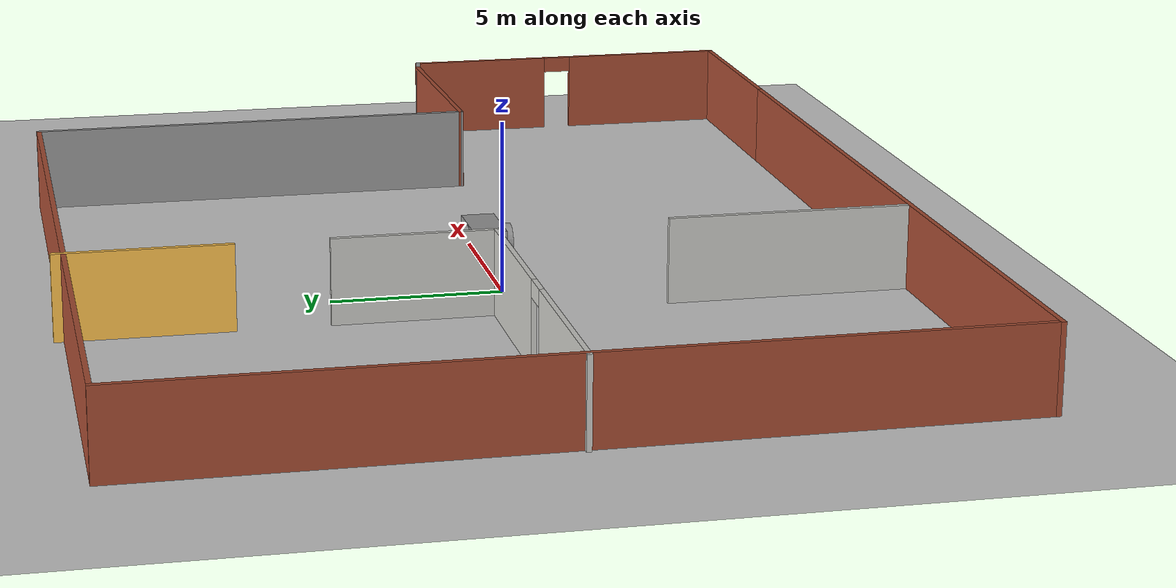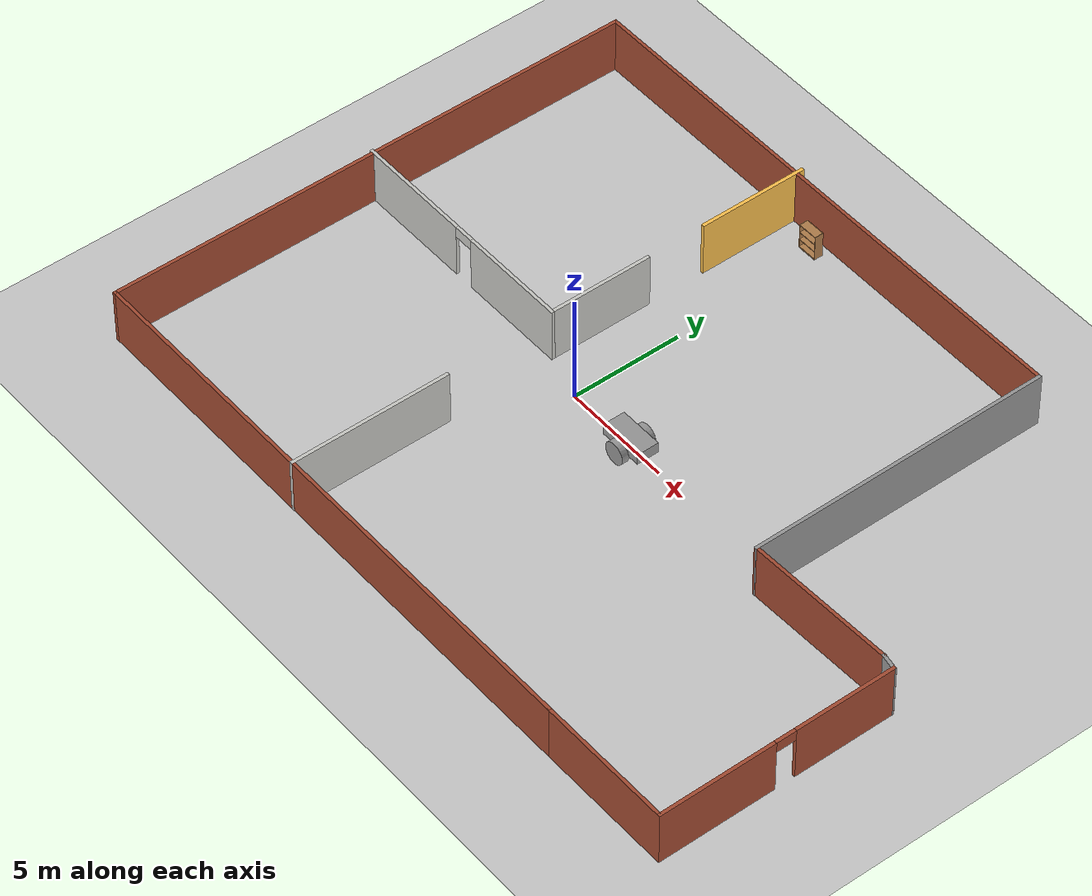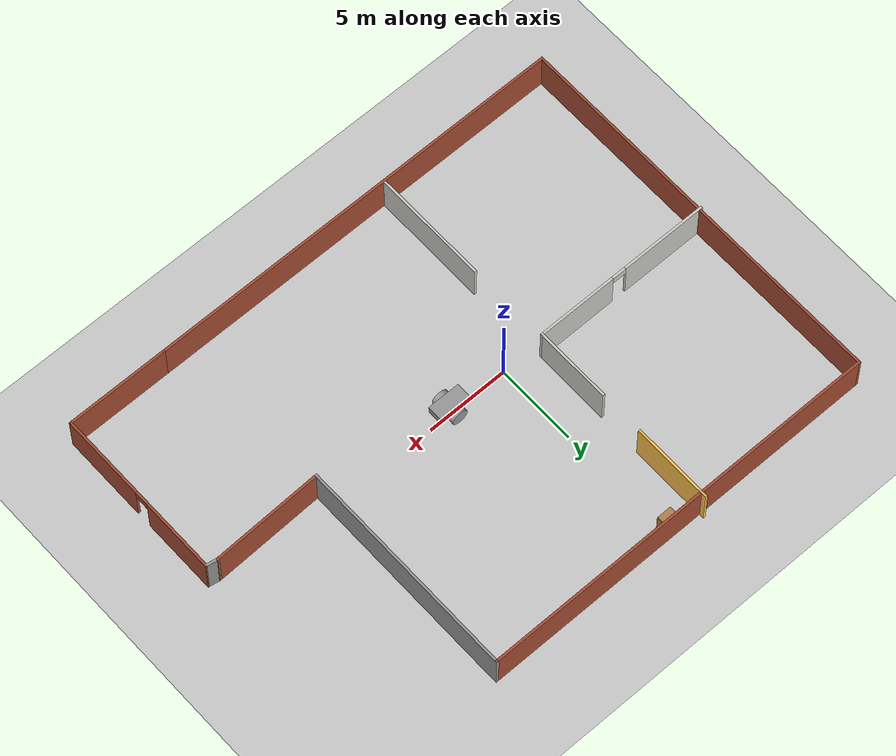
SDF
<sdf version="1.6">
 <world name="default">
  <plugin name="welcome_message" filename="libwelcome_message.so"/>
  <light name="sun" type="directional">
   <pose>0 0 10 0 -0 0</pose>
   <diffuse>0.8 0.8 0.8 1</diffuse>
   <specular>0.2 0.2 0.2 1</specular>
   <attenuation>
    <range>1000</range>
    <constant>0.9</constant>
    <linear>0.01</linear>
    <quadratic>0.001</quadratic>
   </attenuation>
   <direction>-0.5 0.1 -0.9</direction>
  </light>
  <model name="ground_plane">
   <static>1</static>
   <link name="link">
    <collision name="collision">
     <geometry><plane><normal>0 0 1</normal><size>100 100</size></plane></geometry>
     <surface>
      <contact><collide_bitmask>65535</collide_bitmask></contact>
      <friction><ode><mu>100</mu><mu2>50</mu2></ode></friction>
     </surface>
    </collision>
    <visual name="visual">
     <cast_shadows>0</cast_shadows>
     <geometry><plane><normal>0 0 1</normal><size>100 100</size></plane></geometry>
     <material>
      <script><uri>file://media/materials/scripts/gazebo.material</uri><name>Gazebo/Grey</name></script>
     </material>
    </visual>
   </link>
  </model>
  <gravity>0 0 -9.8</gravity>
  <magnetic_field>6e-06 2.3e-05 -4.2e-05</magnetic_field>
  <atmosphere type="adiabatic"/>
  <physics name="default_physics" default="0" type="ode">
   <max_step_size>0.001</max_step_size>
   <real_time_factor>1</real_time_factor>
   <real_time_update_rate>1000</real_time_update_rate>
  </physics>
  <scene><ambient>0.4 0.4 0.4 1</ambient><background>0.7 0.7 0.7 1</background><shadows>1</shadows></scene>
  <spherical_coordinates>
   <surface_model>EARTH_WGS84</surface_model>
   <latitude_deg>0</latitude_deg>
   <longitude_deg>0</longitude_deg>
   <elevation>0</elevation>
   <heading_deg>0</heading_deg>
  </spherical_coordinates>
  <model name="building">
   <pose>2.95561 0.637558 0 0 -0 0</pose>
   <link name="Wall_10">
    <collision name="Wall_10_Collision">
     <geometry><box><size>24.25 0.15 2.5</size></box></geometry>
     <pose>0 0 1.25 0 -0 0</pose>
    </collision>
    <visual name="Wall_10_Visual">
     <pose>0 0 1.25 0 -0 0</pose>
     <geometry><box><size>24.25 0.15 2.5</size></box></geometry>
     <material>
      <script><uri>file://media/materials/scripts/gazebo.material</uri><name>Gazebo/Bricks</name></script>
      <ambient>1 1 1 1</ambient>
     </material>
     <meta><layer>0</layer></meta>
    </visual>
    <pose>-16.0504 -0.138687 0 0 -0 1.5708</pose>
   </link>
   <link name="Wall_11">
    <collision name="Wall_11_Collision">
     <geometry><box><size>25 0.15 2.5</size></box></geometry>
     <pose>0 0 1.25 0 -0 0</pose>
    </collision>
    <visual name="Wall_11_Visual">
     <pose>0 0 1.25 0 -0 0</pose>
     <geometry><box><size>25 0.15 2.5</size></box></geometry>
     <material>
      <script><uri>file://media/materials/scripts/gazebo.material</uri><name>Gazebo/Bricks</name></script>
      <ambient>1 1 1 1</ambient>
     </material>
     <meta><layer>0</layer></meta>
    </visual>
    <pose>-3.62538 11.9113 0 0 -0 0</pose>
   </link>
   <link name="Wall_12">
    <collision name="Wall_12_Collision">
     <geometry><box><size>13.75 0.15 2.5</size></box></geometry>
     <pose>0 0 1.25 0 -0 0</pose>
    </collision>
    <visual name="Wall_12_Visual">
     <pose>0 0 1.25 0 -0 0</pose>
     <geometry><box><size>13.75 0.15 2.5</size></box></geometry>
     <material>
      <script><uri>file://media/materials/scripts/gazebo.material</uri><name>Gazebo/Grey</name></script>
      <ambient>1 1 1 1</ambient>
     </material>
     <meta><layer>0</layer></meta>
    </visual>
    <pose>8.79962 5.11131 0 0 0 -1.5708</pose>
   </link>
   <link name="Wall_13">
    <collision name="Wall_13_Collision">
     <geometry><box><size>6.85778 0.15 2.5</size></box></geometry>
     <pose>0 0 1.25 0 -0 0</pose>
    </collision>
    <visual name="Wall_13_Visual">
     <pose>0 0 1.25 0 -0 0</pose>
     <geometry><box><size>6.85778 0.15 2.5</size></box></geometry>
     <material>
      <script><uri>file://media/materials/scripts/gazebo.material</uri><name>Gazebo/Bricks</name></script>
      <ambient>1 1 1 1</ambient>
     </material>
     <meta><layer>0</layer></meta>
    </visual>
    <pose>12.1518 -1.58108 0 0 -0 0.032091</pose>
   </link>
   <link name="Wall_16">
    <collision name="Wall_16_Collision">
     <geometry><box><size>6.25 0.15 2.5</size></box></geometry>
     <pose>0 0 1.25 0 -0 0</pose>
    </collision>
    <visual name="Wall_16_Visual">
     <pose>0 0 1.25 0 -0 0</pose>
     <geometry><box><size>6.25 0.15 2.5</size></box></geometry>
     <material>
      <script><uri>file://media/materials/scripts/gazebo.material</uri><name>Gazebo/Bricks</name></script>
      <ambient>1 1 1 1</ambient>
     </material>
     <meta><layer>0</layer></meta>
    </visual>
    <pose>13.0996 -12.1887 0 0 -0 0</pose>
   </link>
   <link name="Wall_18">
    <pose>16.1496 -6.88869 0 0 -0 1.5708</pose>
    <visual name="Wall_18_Visual_0">
     <pose>-2.74935 0 1.25 0 -0 0</pose>
     <geometry><box><size>5.2513 0.15 2.5</size></box></geometry>
     <material>
      <script><uri>file://media/materials/scripts/gazebo.material</uri><name>Gazebo/Bricks</name></script>
      <ambient>1 1 1 1</ambient>
     </material>
     <meta><layer>0</layer></meta>
    </visual>
    <collision name="Wall_18_Collision_0">
     <geometry><box><size>5.2513 0.15 2.5</size></box></geometry>
     <pose>-2.74935 0 1.25 0 -0 0</pose>
    </collision>
    <visual name="Wall_18_Visual_1">
     <pose>3.07565 0 1.25 0 -0 0</pose>
     <geometry><box><size>4.5987 0.15 2.5</size></box></geometry>
     <material>
      <script><uri>file://media/materials/scripts/gazebo.material</uri><name>Gazebo/Bricks</name></script>
      <ambient>1 1 1 1</ambient>
     </material>
     <meta><layer>0</layer></meta>
    </visual>
    <collision name="Wall_18_Collision_1">
     <geometry><box><size>4.5987 0.15 2.5</size></box></geometry>
     <pose>3.07565 0 1.25 0 -0 0</pose>
    </collision>
    <visual name="Wall_18_Visual_2">
     <pose>0.3263 0 2.25 0 -0 0</pose>
     <geometry><box><size>0.9 0.15 0.5</size></box></geometry>
     <material>
      <script><uri>file://media/materials/scripts/gazebo.material</uri><name>Gazebo/Bricks</name></script>
      <ambient>1 1 1 1</ambient>
     </material>
     <meta><layer>0</layer></meta>
    </visual>
    <collision name="Wall_18_Collision_2">
     <geometry><box><size>0.9 0.15 0.5</size></box></geometry>
     <pose>0.3263 0 2.25 0 -0 0</pose>
    </collision>
   </link>
   <link name="Wall_19">
    <collision name="Wall_19_Collision">
     <geometry><box><size>0.805877 0.15 2.5</size></box></geometry>
     <pose>0 0 1.25 0 -0 0</pose>
    </collision>
    <visual name="Wall_19_Visual">
     <pose>0 0 1.25 0 -0 0</pose>
     <geometry><box><size>0.805877 0.15 2.5</size></box></geometry>
     <material>
      <script><uri>file://media/materials/scripts/gazebo.material</uri><name>Gazebo/Grey</name></script>
      <ambient>1 1 1 1</ambient>
     </material>
     <meta><layer>0</layer></meta>
    </visual>
    <pose>15.8268 -1.53107 0 0 -0 2.965</pose>
   </link>
   <link name="Wall_22">
    <pose>-10.6116 -0.033933 0 0 -0 3.14159</pose>
    <visual name="Wall_22_Visual_0">
     <pose>-3.15178 0 1.25 0 -0 0</pose>
     <geometry><box><size>4.94644 0.15 2.5</size></box></geometry>
     <material>
      <script><uri>file://media/materials/scripts/gazebo.material</uri><name>Gazebo/CeilingTiled</name></script>
      <ambient>1 0.764706 0.305882 1</ambient>
     </material>
     <meta><layer>0</layer></meta>
    </visual>
    <collision name="Wall_22_Collision_0">
     <geometry><box><size>4.94644 0.15 2.5</size></box></geometry>
     <pose>-3.15178 0 1.25 0 -0 0</pose>
    </collision>
    <visual name="Wall_22_Visual_1">
     <pose>2.92322 0 1.25 0 -0 0</pose>
     <geometry><box><size>5.40355 0.15 2.5</size></box></geometry>
     <material>
      <script><uri>file://media/materials/scripts/gazebo.material</uri><name>Gazebo/CeilingTiled</name></script>
      <ambient>1 0.764706 0.305882 1</ambient>
     </material>
     <meta><layer>0</layer></meta>
    </visual>
    <collision name="Wall_22_Collision_1">
     <geometry><box><size>5.40355 0.15 2.5</size></box></geometry>
     <pose>2.92322 0 1.25 0 -0 0</pose>
    </collision>
    <visual name="Wall_22_Visual_2">
     <pose>-0.228555 0 2.25 0 -0 0</pose>
     <geometry><box><size>0.9 0.15 0.5</size></box></geometry>
     <material>
      <script><uri>file://media/materials/scripts/gazebo.material</uri><name>Gazebo/CeilingTiled</name></script>
      <ambient>1 0.764706 0.305882 1</ambient>
     </material>
     <meta><layer>0</layer></meta>
    </visual>
    <collision name="Wall_22_Collision_2">
     <geometry><box><size>0.9 0.15 0.5</size></box></geometry>
     <pose>-0.228555 0 2.25 0 -0 0</pose>
    </collision>
   </link>
   <link name="Wall_24">
    <collision name="Wall_24_Collision">
     <geometry><box><size>4.75 0.15 2.5</size></box></geometry>
     <pose>0 0 1.25 0 -0 0</pose>
    </collision>
    <visual name="Wall_24_Visual">
     <pose>0 0 1.25 0 -0 0</pose>
     <geometry><box><size>4.75 0.15 2.5</size></box></geometry>
     <material>
      <script><uri>file://media/materials/scripts/gazebo.material</uri><name>Gazebo/CeilingTiled</name></script>
      <ambient>1 0.764706 0.305882 1</ambient>
     </material>
     <meta><layer>0</layer></meta>
    </visual>
    <pose>-5.06163 2.26607 0 0 -0 1.5708</pose>
   </link>
   <link name="Wall_26">
    <collision name="Wall_26_Collision">
     <geometry><box><size>5 0.15 2.5</size></box></geometry>
     <pose>0 0 1.25 0 -0 0</pose>
    </collision>
    <visual name="Wall_26_Visual">
     <pose>0 0 1.25 0 -0 0</pose>
     <geometry><box><size>5 0.15 2.5</size></box></geometry>
     <material>
      <script><uri>file://media/materials/scripts/gazebo.material</uri><name>Gazebo/Grey</name></script>
      <ambient>1 0.764706 0.305882 1</ambient>
     </material>
     <meta><layer>0</layer></meta>
    </visual>
    <pose>-5.06163 9.76482 0 0 0 -1.5708</pose>
   </link>
   <link name="Wall_28">
    <collision name="Wall_28_Collision">
     <geometry><box><size>7.25 0.15 2.5</size></box></geometry>
     <pose>0 0 1.25 0 -0 0</pose>
    </collision>
    <visual name="Wall_28_Visual">
     <pose>0 0 1.25 0 -0 0</pose>
     <geometry><box><size>7.25 0.15 2.5</size></box></geometry>
     <material>
      <script><uri>file://media/materials/scripts/gazebo.material</uri><name>Gazebo/CeilingTiled</name></script>
      <ambient>1 0.333333 1 1</ambient>
     </material>
     <meta><layer>0</layer></meta>
    </visual>
    <pose>-4.93788 -8.63982 0 0 -0 1.5708</pose>
   </link>
   <link name="Wall_8">
    <collision name="Wall_8_Collision">
     <geometry><box><size>26.25 0.15 2.5</size></box></geometry>
     <pose>0 0 1.25 0 -0 0</pose>
    </collision>
    <visual name="Wall_8_Visual">
     <pose>0 0 1.25 0 -0 0</pose>
     <geometry><box><size>26.25 0.15 2.5</size></box></geometry>
     <material>
      <script><uri>file://media/materials/scripts/gazebo.material</uri><name>Gazebo/Bricks</name></script>
      <ambient>1 1 1 1</ambient>
     </material>
     <meta><layer>0</layer></meta>
    </visual>
    <pose>-3.00038 -12.1887 0 0 -0 3.14159</pose>
   </link>
   <static>1</static>
  </model>
  <model name="bookshelf">
   <static>1</static>
   <link name="link">
    <inertial><mass>1</mass></inertial>
    <collision name="back">
     <pose>0 0.005 0.6 0 -0 0</pose>
     <geometry><box><size>0.9 0.01 1.2</size></box></geometry>
    </collision>
    <visual name="visual1">
     <pose>0 0.005 0.6 0 -0 0</pose>
     <geometry><box><size>0.9 0.01 1.2</size></box></geometry>
     <material>
      <script><uri>file://media/materials/scripts/gazebo.material</uri><name>Gazebo/Wood</name></script>
     </material>
    </visual>
    <collision name="left_side">
     <pose>0.45 -0.195 0.6 0 -0 0</pose>
     <geometry><box><size>0.02 0.4 1.2</size></box></geometry>
    </collision>
    <visual name="visual2">
     <pose>0.45 -0.195 0.6 0 -0 0</pose>
     <geometry><box><size>0.02 0.4 1.2</size></box></geometry>
     <material>
      <script><uri>file://media/materials/scripts/gazebo.material</uri><name>Gazebo/Wood</name></script>
     </material>
    </visual>
    <collision name="right_side">
     <pose>-0.45 -0.195 0.6 0 -0 0</pose>
     <geometry><box><size>0.02 0.4 1.2</size></box></geometry>
    </collision>
    <visual name="visual3">
     <pose>-0.45 -0.195 0.6 0 -0 0</pose>
     <geometry><box><size>0.02 0.4 1.2</size></box></geometry>
     <material>
      <script><uri>file://media/materials/scripts/gazebo.material</uri><name>Gazebo/Wood</name></script>
     </material>
    </visual>
    <collision name="bottom">
     <pose>0 -0.195 0.03 0 -0 0</pose>
     <geometry><box><size>0.88 0.4 0.06</size></box></geometry>
    </collision>
    <visual name="visual4">
     <pose>0 -0.195 0.03 0 -0 0</pose>
     <geometry><box><size>0.88 0.4 0.06</size></box></geometry>
     <material>
      <script><uri>file://media/materials/scripts/gazebo.material</uri><name>Gazebo/Wood</name></script>
     </material>
    </visual>
    <collision name="top">
     <pose>0 -0.195 1.19 0 -0 0</pose>
     <geometry><box><size>0.88 0.4 0.02</size></box></geometry>
    </collision>
    <visual name="visual5">
     <pose>0 -0.195 1.19 0 -0 0</pose>
     <geometry><box><size>0.88 0.4 0.02</size></box></geometry>
     <material>
      <script><uri>file://media/materials/scripts/gazebo.material</uri><name>Gazebo/Wood</name></script>
     </material>
    </visual>
    <collision name="low_shelf">
     <pose>0 -0.195 0.43 0 -0 0</pose>
     <geometry><box><size>0.88 0.4 0.02</size></box></geometry>
    </collision>
    <visual name="visual6">
     <pose>0 -0.195 0.43 0 -0 0</pose>
     <geometry><box><size>0.88 0.4 0.02</size></box></geometry>
     <material>
      <script><uri>file://media/materials/scripts/gazebo.material</uri><name>Gazebo/Wood</name></script>
     </material>
    </visual>
    <collision name="high_shelf">
     <pose>0 -0.195 0.8 0 -0 0</pose>
     <geometry><box><size>0.88 0.4 0.02</size></box></geometry>
    </collision>
    <visual name="visual7">
     <pose>0 -0.195 0.8 0 -0 0</pose>
     <geometry><box><size>0.88 0.4 0.02</size></box></geometry>
     <material>
      <script><uri>file://media/materials/scripts/gazebo.material</uri><name>Gazebo/Wood</name></script>
     </material>
    </visual>
   </link>
   <pose>-0.369678 12.0893 0 0 -0 0</pose>
  </model>
  <model name="myrobot_0">
   <link name="link_3">
    <pose>0 0 0.2 0 -0 0</pose>
    <inertial>
     <mass>1</mass>
     <inertia>
      <ixx>0.166667</ixx>
      <ixy>0</ixy>
      <ixz>0</ixz>
      <iyy>0.166667</iyy>
      <iyz>0</iyz>
      <izz>0.166667</izz>
     </inertia>
    </inertial>
    <visual name="visual">
     <geometry><box><size>2 1 0.5</size></box></geometry>
     <material>
      <lighting>1</lighting>
      <script><uri>file://media/materials/scripts/gazebo.material</uri><name>Gazebo/Grey</name></script>
      <shader type="pixel"><normal_map>__default__</normal_map></shader>
      <ambient>0.3 0.3 0.3 1</ambient>
      <diffuse>0.7 0.7 0.7 1</diffuse>
      <specular>0.01 0.01 0.01 1</specular>
      <emissive>0 0 0 1</emissive>
     </material>
    </visual>
    <collision name="collision">
     <geometry><box><size>2 1 0.5</size></box></geometry>
     <surface>
      <friction>
       <ode><mu>1</mu><mu2>1</mu2><fdir1>0 0 0</fdir1><slip1>0</slip1><slip2>0</slip2></ode>
       <torsional>
        <coefficient>1</coefficient>
        <patch_radius>0</patch_radius>
        <surface_radius>0</surface_radius>
        <use_patch_radius>1</use_patch_radius>
        <ode><slip>0</slip></ode>
       </torsional>
      </friction>
      <bounce><restitution_coefficient>0</restitution_coefficient><threshold>1e+06</threshold></bounce>
      <contact>
       <collide_without_contact>0</collide_without_contact>
       <collide_without_contact_bitmask>1</collide_without_contact_bitmask>
       <collide_bitmask>1</collide_bitmask>
       <ode>
        <soft_cfm>0</soft_cfm>
        <soft_erp>0.2</soft_erp>
        <kp>1e+13</kp>
        <kd>1</kd>
        <max_vel>0.01</max_vel>
        <min_depth>0</min_depth>
       </ode>
       <bullet>
        <split_impulse>1</split_impulse>
        <split_impulse_penetration_threshold>-0.01</split_impulse_penetration_threshold>
        <soft_cfm>0</soft_cfm>
        <soft_erp>0.2</soft_erp>
        <kp>1e+13</kp>
        <kd>1</kd>
       </bullet>
      </contact>
     </surface>
    </collision>
   </link>
   <link name="link_4_clone">
    <pose>0 0.650048 -0.1 1.5707 -0 0</pose>
    <inertial>
     <mass>1</mass>
     <inertia><ixx>0.145833</ixx><ixy>0</ixy><ixz>0</ixz><iyy>0.145833</iyy><iyz>0</iyz><izz>0.125</izz></inertia>
    </inertial>
    <visual name="visual">
     <geometry><cylinder><radius>0.5</radius><length>0.3</length></cylinder></geometry>
     <material>
      <lighting>1</lighting>
      <script><uri>file://media/materials/scripts/gazebo.material</uri><name>Gazebo/Grey</name></script>
      <shader type="pixel"><normal_map>__default__</normal_map></shader>
      <ambient>0.3 0.3 0.3 1</ambient>
      <diffuse>0.7 0.7 0.7 1</diffuse>
      <specular>0.01 0.01 0.01 1</specular>
      <emissive>0 0 0 1</emissive>
     </material>
    </visual>
    <collision name="collision">
     <geometry><cylinder><radius>0.5</radius><length>0.3</length></cylinder></geometry>
     <surface>
      <friction>
       <ode><mu>1</mu><mu2>1</mu2><fdir1>0 0 0</fdir1><slip1>0</slip1><slip2>0</slip2></ode>
       <torsional>
        <coefficient>1</coefficient>
        <patch_radius>0</patch_radius>
        <surface_radius>0</surface_radius>
        <use_patch_radius>1</use_patch_radius>
        <ode><slip>0</slip></ode>
       </torsional>
      </friction>
      <bounce><restitution_coefficient>0</restitution_coefficient><threshold>1e+06</threshold></bounce>
      <contact>
       <collide_without_contact>0</collide_without_contact>
       <collide_without_contact_bitmask>1</collide_without_contact_bitmask>
       <collide_bitmask>1</collide_bitmask>
       <ode>
        <soft_cfm>0</soft_cfm>
        <soft_erp>0.2</soft_erp>
        <kp>1e+13</kp>
        <kd>1</kd>
        <max_vel>0.01</max_vel>
        <min_depth>0</min_depth>
       </ode>
       <bullet>
        <split_impulse>1</split_impulse>
        <split_impulse_penetration_threshold>-0.01</split_impulse_penetration_threshold>
        <soft_cfm>0</soft_cfm>
        <soft_erp>0.2</soft_erp>
        <kp>1e+13</kp>
        <kd>1</kd>
       </bullet>
      </contact>
     </surface>
    </collision>
   </link>
   <link name="link_4_clone_clone">
    <pose>0 -0.650048 -0.1 1.5707 -0 0</pose>
    <inertial>
     <mass>1</mass>
     <inertia><ixx>0.145833</ixx><ixy>0</ixy><ixz>0</ixz><iyy>0.145833</iyy><iyz>0</iyz><izz>0.125</izz></inertia>
    </inertial>
    <visual name="visual">
     <geometry><cylinder><radius>0.5</radius><length>0.3</length></cylinder></geometry>
     <material>
      <lighting>1</lighting>
      <script><uri>file://media/materials/scripts/gazebo.material</uri><name>Gazebo/Grey</name></script>
      <shader type="pixel"><normal_map>__default__</normal_map></shader>
      <ambient>0.3 0.3 0.3 1</ambient>
      <diffuse>0.7 0.7 0.7 1</diffuse>
      <specular>0.01 0.01 0.01 1</specular>
      <emissive>0 0 0 1</emissive>
     </material>
    </visual>
    <collision name="collision">
     <geometry><cylinder><radius>0.5</radius><length>0.3</length></cylinder></geometry>
     <surface>
      <friction>
       <ode><mu>1</mu><mu2>1</mu2><fdir1>0 0 0</fdir1><slip1>0</slip1><slip2>0</slip2></ode>
       <torsional>
        <coefficient>1</coefficient>
        <patch_radius>0</patch_radius>
        <surface_radius>0</surface_radius>
        <use_patch_radius>1</use_patch_radius>
        <ode><slip>0</slip></ode>
       </torsional>
      </friction>
      <bounce><restitution_coefficient>0</restitution_coefficient><threshold>1e+06</threshold></bounce>
      <contact>
       <collide_without_contact>0</collide_without_contact>
       <collide_without_contact_bitmask>1</collide_without_contact_bitmask>
       <collide_bitmask>1</collide_bitmask>
       <ode>
        <soft_cfm>0</soft_cfm>
        <soft_erp>0.2</soft_erp>
        <kp>1e+13</kp>
        <kd>1</kd>
        <max_vel>0.01</max_vel>
        <min_depth>0</min_depth>
       </ode>
       <bullet>
        <split_impulse>1</split_impulse>
        <split_impulse_penetration_threshold>-0.01</split_impulse_penetration_threshold>
        <soft_cfm>0</soft_cfm>
        <soft_erp>0.2</soft_erp>
        <kp>1e+13</kp>
        <kd>1</kd>
       </bullet>
      </contact>
     </surface>
    </collision>
   </link>
   <joint name="link_3_JOINT_3" type="revolute">
    <parent>link_3</parent>
    <child>link_4_clone_clone</child>
    <axis>
     <xyz>0 0 1</xyz>
     <use_parent_model_frame>0</use_parent_model_frame>
     <limit>
      <lower>-1.79769e+308</lower>
      <upper>1.79769e+308</upper>
      <effort>-1</effort>
      <velocity>-1</velocity>
     </limit>
     <dynamics>
      <spring_reference>0</spring_reference>
      <spring_stiffness>0</spring_stiffness>
      <damping>0</damping>
     </dynamics>
    </axis>
    <physics>
     <ode><limit><cfm>0</cfm><erp>0.2</erp></limit><suspension><cfm>0</cfm><erp>0.2</erp></suspension></ode>
    </physics>
   </joint>
   <joint name="link_3_JOINT_4" type="revolute">
    <parent>link_3</parent>
    <child>link_4_clone</child>
    <axis>
     <xyz>0 0 1</xyz>
     <use_parent_model_frame>0</use_parent_model_frame>
     <limit>
      <lower>-1.79769e+308</lower>
      <upper>1.79769e+308</upper>
      <effort>-1</effort>
      <velocity>-1</velocity>
     </limit>
     <dynamics>
      <spring_reference>0</spring_reference>
      <spring_stiffness>0</spring_stiffness>
      <damping>0</damping>
     </dynamics>
    </axis>
    <physics>
     <ode><limit><cfm>0</cfm><erp>0.2</erp></limit><suspension><cfm>0</cfm><erp>0.2</erp></suspension></ode>
    </physics>
   </joint>
   <static>0</static>
   <pose>3.54098 -0.177563 0.6 0 -0 0</pose>
  </model>
 </world>
</sdf>
